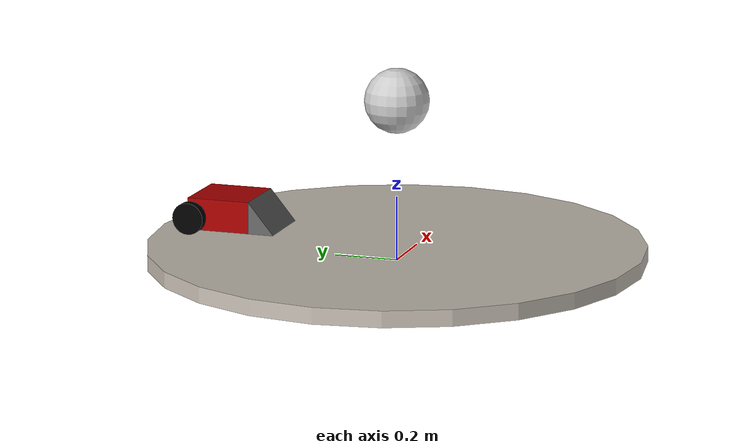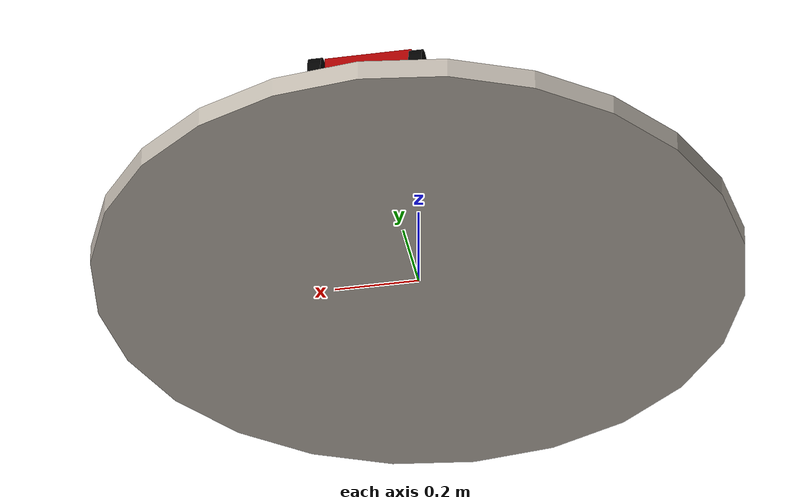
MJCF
<mujoco model="sumo_scene">
  <compiler angle="radian"/>

  <option timestep="0.001" impratio="10" tolerance="1e-10" iterations="50"/>

  <default>
    <default class="_main">
      <default class="_ground">
        <geom condim="4" friction="0.9 0.005 0.001"/>
      </default>
    </default>
    <default class="A_main">
      <default class="A_wheel">
        <geom type="cylinder" condim="4" friction="1.2 0.01 0.01" rgba="0 0 0 1"/>
      </default>
      <default class="A_robot_body">
        <geom condim="4" friction="0.5 0.005 0.001" solref="0.004" solimp="0.95 0.99"/>
      </default>
    </default>
  </default>

  <asset>
    <texture type="2d" colorspace="linear" name="_dohyo_tex" file="../assets/dohyo.PNG"/>
    <material name="_dohyo_mat" texture="_dohyo_tex"/>
    <mesh name="A_rampa_mesh" content_type="model/stl" file="../assets/rampa.stl"/>
  </asset>

  <worldbody>
    <light pos="0 0 3" dir="0 0 -1" diffuse="1 1 1"/>
    <body pos="0 0 0.5">
      <joint type="free"/>
      <geom size="0.1" mass="10" rgba="0.8 0.8 0.8 1"/>
    </body>
    <body name="_arena" pos="0 0 0.03">
      <geom name="_dohyo_surface" class="_ground" size="0.77 0.025" type="cylinder" material="_dohyo_mat"/>
    </body>
    <body name="A_robot" pos="0 0.55 0.12">
      <joint name="A_robot_root" type="free"/>
      <geom name="A_robot_body" class="A_robot_body" size="0.1 0.1 0.05" type="box" rgba="0.667 0 0 1"/>
      <geom name="A_robot_rampa" class="A_robot_body" type="mesh" rgba="0.4 0.4 0.4 1" mesh="A_rampa_mesh"/>
      <body name="A_robot_wheel_left" pos="0.115 0.1 -0.01">
        <joint name="A_robot_left_wheel_joint" pos="0 0 0" axis="1 0 0" damping="0.01"/>
        <geom class="A_wheel" size="0.05 0.015" quat="0.707107 0 0.707107 0"/>
      </body>
      <body name="A_robot_wheel_right" pos="-0.115 0.09 -0.01">
        <joint name="A_robot_right_wheel_joint" pos="0 0 0" axis="1 0 0" damping="0.01"/>
        <geom class="A_wheel" size="0.05 0.015" quat="0.707107 0 0.707107 0"/>
      </body>
      <body name="A_robot_caster" pos="0 -0.1 -0.05">
        <joint name="A_robot_caster_joint" pos="0 0 0" type="ball" damping="0.001"/>
        <geom size="0.01" friction="0.01 0.001 0.001" rgba="0.667 0 0 1"/>
      </body>
    </body>
  </worldbody>

  <actuator>
    <general name="A_robot_left" joint="A_robot_left_wheel_joint" biastype="affine" gainprm="0.5" biasprm="0 0 -0.5"/>
    <general name="A_robot_right" joint="A_robot_right_wheel_joint" biastype="affine" gainprm="0.5" biasprm="0 0 -0.5"/>
  </actuator>
</mujoco>
